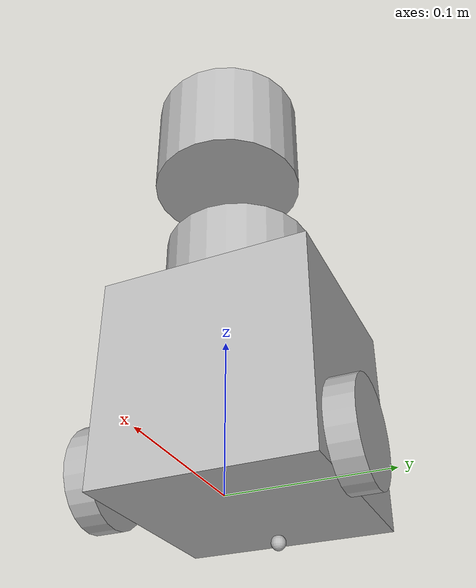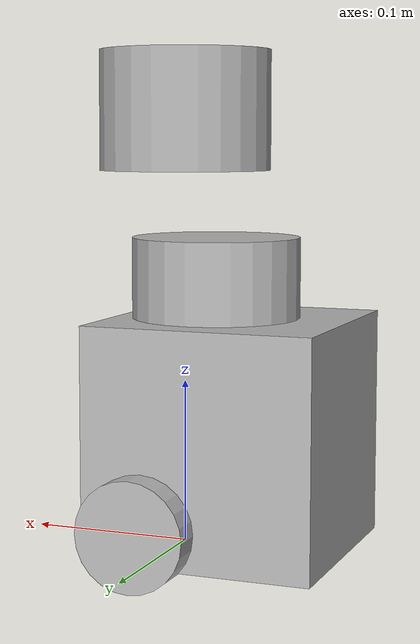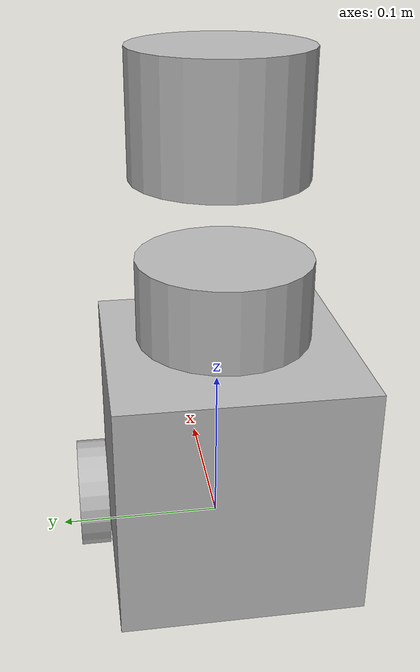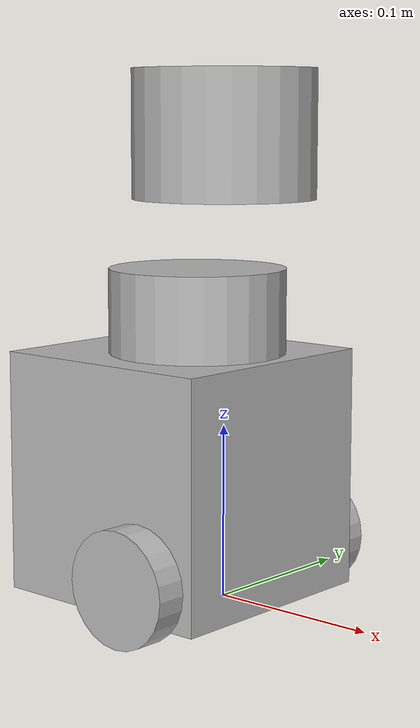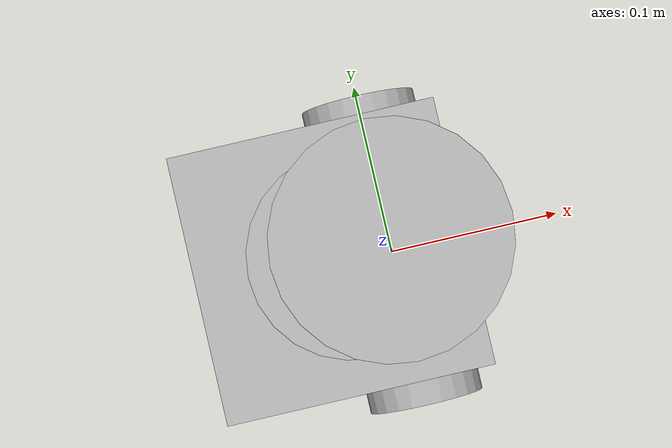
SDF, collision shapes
<?xml version="1.0" ?>
<sdf version="1.5">
  <model name="chargingmodel">
    <pose>0.0 0.0 0.0 0.0 0.0 0.0</pose>

    <link name="base_footprint"/>

    <link name="base_link">

      <inertial>
        <pose>-0.032 0 0.070 0 0 0</pose>
        <inertia>
          <ixx>0.001</ixx>
          <ixy>0.000</ixy>
          <ixz>0.000</ixz>
          <iyy>0.001</iyy>
          <iyz>0.000</iyz>
          <izz>0.001</izz>
        </inertia>
        <mass>1.0</mass>
      </inertial>

      <collision name="base_collision">
        <pose>-0.032 0 0.070 0 0 0</pose>
        <geometry>
          <box>
            <size>0.140 0.140 0.140</size>
          </box>
        </geometry>
      </collision>

      <collision name='base_footprint_fixed_joint_lump__velodyne_base_link_collision_1'>
        <pose>0 0 0.26415 0 0 0</pose>
        <geometry>
          <cylinder>
            <length>0.0717</length>
            <radius>0.0516</radius>
          </cylinder>
        </geometry>
      </collision>

      <!-- taeyoung: 여기서 벨로다인 gazebo에서 위치 조절하는 것 -->
      <visual name='base_footprint_fixed_joint_lump__velodyne_base_link_visual_1'>
        <pose>-0.020 0 0.16 0 0 0</pose>
        <geometry>
          <mesh>
            <scale>1 1 1</scale>
            <uri>model://velodyne_description/meshes/VLP16_base_1.dae</uri>
          </mesh>
        </geometry>
      </visual>
      <visual name='base_footprint_fixed_joint_lump__velodyne_base_link_visual_2'>
        <pose>-0.020 0 0.16 0 0 0</pose>
        <geometry>
          <mesh>
            <scale>1 1 1</scale>
            <uri>model://velodyne_description/meshes/VLP16_base_2.dae</uri>
          </mesh>
        </geometry>
      </visual>
      <visual name='base_footprint_fixed_joint_lump__velodyne_visual_3'>
        <pose>-0.020 0 0.16 0 0 0</pose>
        <geometry>
          <mesh>
            <scale>1 1 1</scale>
            <uri>model://velodyne_description/meshes/VLP16_scan.dae</uri>
          </mesh>
        </geometry>
      </visual>
      <self_collide>0</self_collide>

      <visual name="base_visual">
        <pose>-0.032 0 0 0 0 0</pose>
        <geometry>
          <mesh>
            <uri>model://charging_model/meshes/burger_base.stl</uri>
            <scale>0.001 0.001 0.001</scale>
          </mesh>
        </geometry>
      </visual>

      <sensor name='velodyne-VLP16' type='ray'>
        <!-- 키면16채널다켜져서어지러움 -->
        <visualize>0</visualize>
        <update_rate>10</update_rate>
        <ray>
          <scan>
            <horizontal>
              <samples>440</samples>
              <resolution>1</resolution>
              <min_angle>-3.14159</min_angle>
              <max_angle>3.14159</max_angle>
            </horizontal>
            <vertical>
              <samples>16</samples>
              <resolution>1</resolution>
              <min_angle>-0.261799</min_angle>
              <max_angle>0.261799</max_angle>
            </vertical>
          </scan>
          <range>
            <min>0.3</min>
            <max>131</max>
            <resolution>0.001</resolution>
          </range>
          <noise>
            <type>gaussian</type>
            <mean>0</mean>
            <stddev>0</stddev>
          </noise>
        </ray>
        <plugin name='gazebo_ros_laser_controller' filename='libgazebo_ros_velodyne_laser.so'>
          <ros>
            <!-- 네임스페이스 설정 -->
            <namespace>charging</namespace>
            <remapping>~/out:=velodyne_points</remapping>
          </ros>
          <topicName>points_raw</topicName>
          <frameName>velodyne</frameName>
          <min_range>0.9</min_range>
          <max_range>130.0</max_range>
          <gaussianNoise>0.008</gaussianNoise>
        </plugin>
        <!-- 파란색 laser의 위치 -->
        <pose>0 0 0.3 0 0 0</pose>
      </sensor>
    </link>

    <link name="front_camera_link">
      <!--  새로 추가하는 camera 센서 부분  -->
      <!-- 카메라를 로봇 위쪽에 배치: 여기서는 예시로 z=0.20 -->
      <pose>0 0 0.20 0 0 0</pose>

      <!-- 필수: 질량, 관성 (아주 작게라도 넣어주어야 함) -->
      <inertial>
        <mass>0.05</mass>
        <inertia>
          <ixx>0.00005</ixx>
          <ixy>0</ixy>
          <ixz>0</ixz>
          <iyy>0.00005</iyy>
          <iyz>0</iyz>
          <izz>0.00005</izz>
        </inertia>
      </inertial>

      <!-- 카메라 센서 선언 -->
      <sensor name="tb3_front_camera" type="camera">
        <!-- 항상 켜두기 -->
        <always_on>true</always_on>
        <!-- Gazebo GUI에서 센서 시각화 여부 -->
        <visualize>false</visualize>
        <!-- 업데이트 주기(Hz) -->
        <update_rate>30</update_rate>
        <!-- 돌리려면 yaw에 3.14159 -->
        <pose>0 0 0.2 0 0 0</pose>  <!-- x=0, y=0, z=0.2, roll=0, pitch=0, yaw=0 -->
        <!-- 카메라 기본 설정 -->
        <camera>
          <!-- 시야각(FOV), 80도 정도 -->
          <horizontal_fov>1.3962634</horizontal_fov>
          <image>
            <width>640</width>
            <height>480</height>
            <format>R8G8B8</format>
          </image>
          <clip>
            <near>0.1</near>    <!-- 최소 거리 -->
            <far>100.0</far>    <!-- 최대 거리 -->
          </clip>
        </camera>
        <!-- ROS 플러그인 -->
        <!-- 플러그인 네임 중복되면 에러남 -->
        <plugin name="gazebo_ros_front_camera" filename="libgazebo_ros_camera.so">
          <ros>
            <!-- 네임스페이스 설정 -->
            <namespace>charging</namespace>
            <!-- 필요한 remapping 설정 -->
            <remapping>~/image_raw:=front_camera/image_raw</remapping>
            <remapping>~/camera_info:=front_camera/camera_info</remapping>
          </ros>
          <cameraName>tb3_front_camera</cameraName>
          <frameName>front_camera_link</frameName>
        </plugin>
      </sensor>
    </link>

    <link name="rear_camera_link">
      <!--  새로 추가하는 camera 센서 부분  -->
      <!-- 카메라를 로봇 위쪽에 배치: 여기서는 예시로 z=0.20 -->
      <pose>0 0 0.20 0 0 0</pose>

      <!-- 필수: 질량, 관성 (아주 작게라도 넣어주어야 함) -->
      <inertial>
        <mass>0.05</mass>
        <inertia>
          <ixx>0.00005</ixx>
          <ixy>0</ixy>
          <ixz>0</ixz>
          <iyy>0.00005</iyy>
          <iyz>0</iyz>
          <izz>0.00005</izz>
        </inertia>
      </inertial>

      <!-- 카메라 센서 선언 -->
      <sensor name="tb3_rear_camera" type="camera">
        <!-- 항상 켜두기 -->
        <always_on>true</always_on>
        <!-- Gazebo GUI에서 센서 시각화 여부 -->
        <visualize>false</visualize>
        <!-- 업데이트 주기(Hz) -->
        <update_rate>30</update_rate>
        <!-- 돌리려면 yaw에 3.14159 -->
        <pose>0 0 0.2 0 0 3.14159</pose>  <!-- x=0, y=0, z=0.2, roll=0, pitch=0, yaw=0 -->
        <!-- 카메라 기본 설정 -->
        <camera>
          <!-- 시야각(FOV), 80도 정도 -->
          <horizontal_fov>1.3962634</horizontal_fov>
          <image>
            <width>640</width>
            <height>480</height>
            <format>R8G8B8</format>
          </image>
          <clip>
            <near>0.1</near>    <!-- 최소 거리 -->
            <far>100.0</far>    <!-- 최대 거리 -->
          </clip>
        </camera>
        <!-- ROS 플러그인 -->
        <plugin name="gazebo_ros_rear_camera" filename="libgazebo_ros_camera.so">
          <ros>
            <!-- 네임스페이스 설정 -->
            <namespace>charging</namespace>
            <!-- 필요한 remapping 설정 -->
            <remapping>~/image_raw:=rear_camera/image_raw</remapping>
            <remapping>~/camera_info:=rear_camera/camera_info</remapping>
          </ros>
          <cameraName>tb3_rear_camera</cameraName>
          <frameName>rear_camera_link</frameName>
        </plugin>
      </sensor>
    </link>

    <link name="gps_link">
      <!--  새로 추가하는 GPS 센서 부분  -->
      <inertial>
        <mass>0.001</mass>
        <inertia>
          <ixx>0.000001</ixx>
          <ixy>0</ixy>
          <ixz>0</ixz>
          <iyy>0.000001</iyy>
          <iyz>0</iyz>
          <izz>0.000001</izz>
        </inertia>
      </inertial>
      <sensor name="tb3_gps" type="gps">
        <!-- 센서 기본 설정 -->
        <always_on>true</always_on>
        <update_rate>8</update_rate> <!-- 초당 8회 업데이트 예시 -->

        <!-- Gazebo ROS GPS 플러그인 -->
        <plugin name="my_gps_plugin" filename="libgazebo_ros_gps_sensor.so">
          <ros>
            <!-- 네임스페이스 설정 -->
            <namespace>charging</namespace>
            <remapping>~/out:=gps</remapping>
          </ros>
          <!-- 아래 항목들은 플러그인에 따라 다르나, 일반적으로 설정 -->
        </plugin>
      </sensor>
    </link>

    <link name="imu_link">
      <inertial>
        <mass>0.001</mass>
        <inertia>
          <ixx>0.000001</ixx>
          <ixy>0</ixy>
          <ixz>0</ixz>
          <iyy>0.000001</iyy>
          <iyz>0</iyz>
          <izz>0.000001</izz>
        </inertia>
      </inertial>
      <sensor name="tb3_imu" type="imu">
        <always_on>true</always_on>
        <update_rate>200</update_rate>
        <imu>
          <angular_velocity>
            <x>
              <noise type="gaussian">
                <mean>0.0</mean>
                <stddev>2e-4</stddev>
              </noise>
            </x>
            <y>
              <noise type="gaussian">
                <mean>0.0</mean>
                <stddev>2e-4</stddev>
              </noise>
            </y>
            <z>
              <noise type="gaussian">
                <mean>0.0</mean>
                <stddev>2e-4</stddev>
              </noise>
            </z>
          </angular_velocity>
          <linear_acceleration>
            <x>
              <noise type="gaussian">
                <mean>0.0</mean>
                <stddev>1.7e-2</stddev>
              </noise>
            </x>
            <y>
              <noise type="gaussian">
                <mean>0.0</mean>
                <stddev>1.7e-2</stddev>
              </noise>
            </y>
            <z>
              <noise type="gaussian">
                <mean>0.0</mean>
                <stddev>1.7e-2</stddev>
              </noise>
            </z>
          </linear_acceleration>
        </imu>
        <plugin name="turtlebot3_imu" filename="libgazebo_ros_imu_sensor.so">
          <ros>
            <!-- 네임스페이스 설정 -->
            <namespace>charging</namespace>
            <remapping>~/out:=imu</remapping>
          </ros>
        </plugin>
      </sensor>

    </link>

    <link name="base_scan">
      <inertial>
        <pose>-0.020 0 0.161 0 0 0</pose>
        <inertia>
          <ixx>0.001</ixx>
          <ixy>0.000</ixy>
          <ixz>0.000</ixz>
          <iyy>0.001</iyy>
          <iyz>0.000</iyz>
          <izz>0.001</izz>
        </inertia>
        <mass>0.125</mass>
      </inertial>

      <collision name="lidar_sensor_collision">
        <pose>-0.020 0 0.161 0 0 0</pose>
        <geometry>
          <cylinder>
            <radius>0.0508</radius>
            <length>0.055</length>
          </cylinder>
        </geometry>
      </collision>

      <visual name="lidar_sensor_visual">
        <pose>-0.032 0 0.171 0 0 0</pose>
        <geometry>
          <mesh>
            <uri>model://charging_model/meshes/lds.stl</uri>
            <scale>0.001 0.001 0.001</scale>
          </mesh>
        </geometry>
      </visual>

      <sensor name="hls_lfcd_lds" type="ray">
        <always_on>true</always_on>
        <!-- gazebo gui 상에서 끄기 -->
        <visualize>0</visualize>
        <pose>-0.032 0 0.171 0 0 0</pose>
        <update_rate>5</update_rate>
        <ray>
          <scan>
            <horizontal>
              <samples>360</samples>
              <resolution>1.000000</resolution>
              <min_angle>0.000000</min_angle>
              <max_angle>6.280000</max_angle>
            </horizontal>
          </scan>
          <range>
            <min>0.120000</min>
            <max>3.5</max>
            <resolution>0.015000</resolution>
          </range>
          <noise>
            <type>gaussian</type>
            <mean>0.0</mean>
            <stddev>0.01</stddev>
          </noise>
        </ray>
        <plugin name="turtlebot3_laserscan" filename="libgazebo_ros_ray_sensor.so">
          <ros>
            <namespace>charging</namespace>
            <remapping>~/out:=scan</remapping>
          </ros>
          <output_type>sensor_msgs/LaserScan</output_type>
          <frame_name>base_scan</frame_name>
        </plugin>
      </sensor>
    </link>

    <link name="wheel_left_link">

      <inertial>
        <pose>0 0.08 0.023 -1.57 0 0</pose>
        <inertia>
          <ixx>0.001</ixx>
          <ixy>0.000</ixy>
          <ixz>0.000</ixz>
          <iyy>0.001</iyy>
          <iyz>0.000</iyz>
          <izz>0.001</izz>
        </inertia>
        <mass>0.1</mass>
      </inertial>

      <collision name="wheel_left_collision">
        <pose>0 0.08 0.023 -1.57 0 0</pose>
        <geometry>
          <cylinder>
            <radius>0.033</radius>
            <length>0.018</length>
          </cylinder>
        </geometry>
        <surface>
          <!-- This friction pamareter don't contain reliable data!! -->
          <friction>
            <ode>
              <mu>100000.0</mu>
              <mu2>100000.0</mu2>
              <fdir1>0 0 0</fdir1>
              <slip1>0.0</slip1>
              <slip2>0.0</slip2>
            </ode>
          </friction>
          <contact>
            <ode>
              <soft_cfm>0</soft_cfm>
              <soft_erp>0.2</soft_erp>
              <kp>1e+5</kp>
              <kd>1</kd>
              <max_vel>0.01</max_vel>
              <min_depth>0.001</min_depth>
            </ode>
          </contact>
        </surface>
      </collision>

      <visual name="wheel_left_visual">
        <pose>0 0.08 0.023 0 0 0</pose>
        <geometry>
          <mesh>
            <uri>model://charging_model/meshes/left_tire.stl</uri>
            <scale>0.001 0.001 0.001</scale>
          </mesh>
        </geometry>
      </visual>
    </link>

    <link name="wheel_right_link">

      <inertial>
        <pose>0.0 -0.08 0.023 -1.57 0 0</pose>
        <inertia>
          <ixx>0.001</ixx>
          <ixy>0.000</ixy>
          <ixz>0.000</ixz>
          <iyy>0.001</iyy>
          <iyz>0.000</iyz>
          <izz>0.001</izz>
        </inertia>
        <mass>0.1</mass>
      </inertial>

      <collision name="wheel_right_collision">
        <pose>0.0 -0.08 0.023 -1.57 0 0</pose>
        <geometry>
          <cylinder>
            <radius>0.033</radius>
            <length>0.018</length>
          </cylinder>
        </geometry>
        <surface>
          <!-- This friction pamareter don't contain reliable data!! -->
          <friction>
            <ode>
              <mu>100000.0</mu>
              <mu2>100000.0</mu2>
              <fdir1>0 0 0</fdir1>
              <slip1>0.0</slip1>
              <slip2>0.0</slip2>
            </ode>
          </friction>
          <contact>
            <ode>
              <soft_cfm>0</soft_cfm>
              <soft_erp>0.2</soft_erp>
              <kp>1e+5</kp>
              <kd>1</kd>
              <max_vel>0.01</max_vel>
              <min_depth>0.001</min_depth>
            </ode>
          </contact>
        </surface>
      </collision>

      <visual name="wheel_right_visual">
        <pose>0.0 -0.08 0.023 0 0 0</pose>
        <geometry>
          <mesh>
            <uri>model://charging_model/meshes/right_tire.stl</uri>
            <scale>0.001 0.001 0.001</scale>
          </mesh>
        </geometry>
      </visual>
    </link>

    <link name='caster_back_link'>
      <pose>-0.081 0 -0.004 0 0 0</pose>
      <inertial>
        <mass>0.001</mass>
        <inertia>
          <ixx>0.00001</ixx>
          <ixy>0.000</ixy>
          <ixz>0.000</ixz>
          <iyy>0.00001</iyy>
          <iyz>0.000</iyz>
          <izz>0.00001</izz>
        </inertia>
      </inertial>
      <collision name='collision'>
        <geometry>
          <sphere>
            <radius>0.005000</radius>
          </sphere>
        </geometry>
        <surface>
          <contact>
            <ode>
              <soft_cfm>0</soft_cfm>
              <soft_erp>0.2</soft_erp>
              <kp>1e+5</kp>
              <kd>1</kd>
              <max_vel>0.01</max_vel>
              <min_depth>0.001</min_depth>
            </ode>
          </contact>
        </surface>
      </collision>
    </link>

    <joint name="base_joint" type="fixed">
      <parent>base_footprint</parent>
      <child>base_link</child>
      <pose>0.0 0.0 0.010 0 0 0</pose>
    </joint>

    <joint name="wheel_left_joint" type="revolute">
      <parent>base_link</parent>
      <child>wheel_left_link</child>
      <pose>0.0 0.08 0.023 -1.57 0 0</pose>
      <axis>
        <xyz>0 0 1</xyz>
      </axis>
    </joint>

    <joint name="wheel_right_joint" type="revolute">
      <parent>base_link</parent>
      <child>wheel_right_link</child>
      <pose>0.0 -0.08 0.023 -1.57 0 0</pose>
      <axis>
        <xyz>0 0 1</xyz>
      </axis>
    </joint>

    <joint name='caster_back_joint' type='ball'>
      <parent>base_link</parent>
      <child>caster_back_link</child>
    </joint>

    <joint name="imu_joint" type="fixed">
      <parent>base_link</parent>
      <child>imu_link</child>
      <pose>-0.032 0 0.068 0 0 0</pose>
      <axis>
        <xyz>0 0 1</xyz>
      </axis>
    </joint>

    <!-- gps_link랑 잇는 joint추가 -->
    <joint name="gps_joint" type="fixed">
      <parent>base_link</parent>
      <child>gps_link</child>
    </joint>

    <!-- 2) camera_link를 base_link와 연결 -->
    <joint name="front_camera_joint" type="fixed">
      <parent>base_link</parent>
      <child>front_camera_link</child>
      <!-- 원하는 위치/방향으로 조절 가능 -->
      <pose>0 0 0 0 0 0</pose>
    </joint>

    <joint name="rear_camera_joint" type="fixed">
      <parent>base_link</parent>
      <child>rear_camera_link</child>
      <!-- 원하는 위치/방향으로 조절 가능 -->
      <pose>0 0 0 0 0 0</pose>
    </joint>

    <joint name="lidar_joint" type="fixed">
      <parent>base_link</parent>
      <child>base_scan</child>
      <pose>-0.032 0 0.171 0 0 0</pose>
      <axis>
        <xyz>0 0 1</xyz>
      </axis>
    </joint>

    <plugin name="turtlebot3_diff_drive" filename="libgazebo_ros_diff_drive.so">

      <update_rate>30</update_rate>

      <!-- wheels -->
      <left_joint>wheel_left_joint</left_joint>
      <right_joint>wheel_right_joint</right_joint>

      <!-- kinematics -->
      <wheel_separation>0.160</wheel_separation>
      <wheel_diameter>0.066</wheel_diameter>

      <!-- limits -->
      <max_wheel_torque>20</max_wheel_torque>
      <max_wheel_acceleration>1.0</max_wheel_acceleration>

      <!-- 네임스페이스 설정 -->
      <namespace>charging</namespace>
      <command_topic>/cmd_vel</command_topic>

      <!-- output -->
      <publish_odom>true</publish_odom>
      <publish_odom_tf>true</publish_odom_tf>
      <publish_wheel_tf>false</publish_wheel_tf>

      <odometry_topic>odom</odometry_topic>
      <odometry_frame>odom</odometry_frame>
      <robot_base_frame>base_footprint</robot_base_frame>

    </plugin>

    <plugin name="turtlebot3_joint_state" filename="libgazebo_ros_joint_state_publisher.so">
      <ros>
        <namespace>charging</namespace>
        <remapping>~/out:=joint_states</remapping>
      </ros>
      <update_rate>30</update_rate>
      <joint_name>wheel_left_joint</joint_name>
      <joint_name>wheel_right_joint</joint_name>
    </plugin>
  </model>
</sdf>
